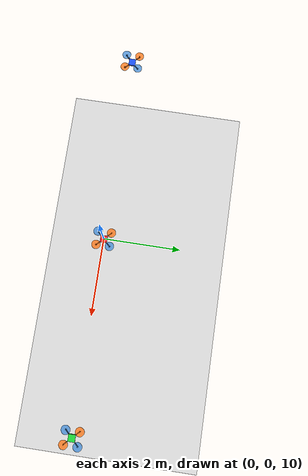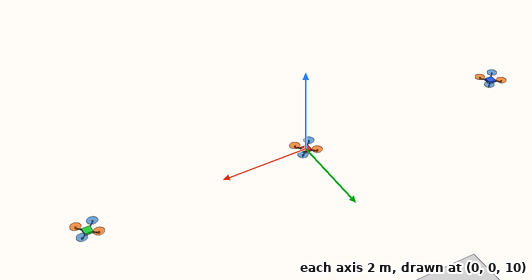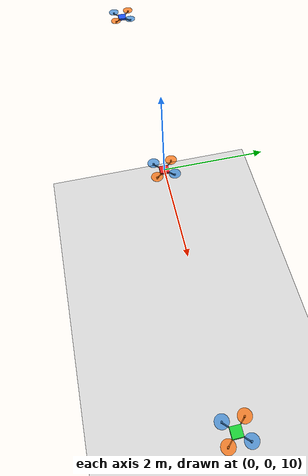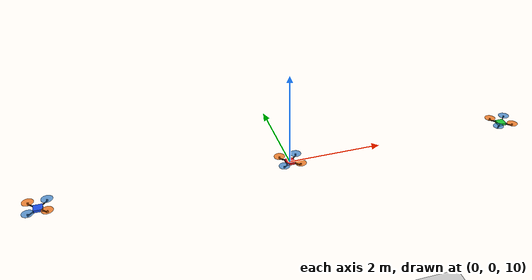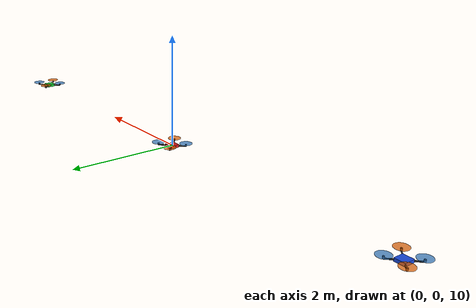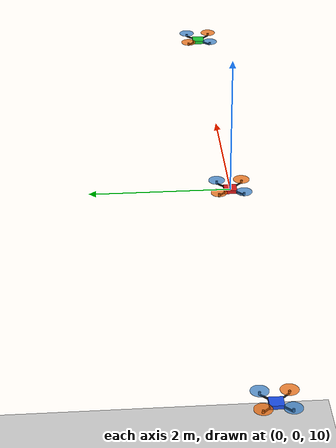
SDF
<?xml version="1.0"?>
<sdf version="1.8">
  <world name="uav_swarm_world">

    <physics name="1ms" type="ode">
      <max_step_size>0.001</max_step_size>
      <real_time_factor>1.0</real_time_factor>
      <real_time_update_rate>1000</real_time_update_rate>
    </physics>

    <plugin filename="ignition-gazebo-physics-system"
            name="ignition::gazebo::systems::Physics"/>
    <!-- UserCommands provides the /world/uav_swarm_world/set_pose service -->
    <plugin filename="ignition-gazebo-user-commands-system"
            name="ignition::gazebo::systems::UserCommands"/>
    <plugin filename="ignition-gazebo-scene-broadcaster-system"
            name="ignition::gazebo::systems::SceneBroadcaster"/>
    <plugin filename="ignition-gazebo-apply-link-wrench-system"
            name="ignition::gazebo::systems::ApplyLinkWrench"/>

    <!-- Lighting -->
    <light type="directional" name="sun">
      <cast_shadows>true</cast_shadows>
      <pose>0 0 10 0 0 0</pose>
      <diffuse>0.8 0.8 0.8 1</diffuse>
      <specular>0.2 0.2 0.2 1</specular>
      <attenuation>
        <range>1000</range><constant>0.9</constant>
        <linear>0.01</linear><quadratic>0.001</quadratic>
      </attenuation>
      <direction>-0.5 0.1 -0.9</direction>
    </light>

    <!-- Ground plane -->
    <model name="ground_plane">
      <static>true</static>
      <link name="link">
        <collision name="collision">
          <geometry><plane><normal>0 0 1</normal><size>100 100</size></plane></geometry>
        </collision>
        <visual name="visual">
          <geometry><plane><normal>0 0 1</normal><size>100 100</size></plane></geometry>
          <material><ambient>0.8 0.8 0.8 1</ambient><diffuse>0.8 0.8 0.8 1</diffuse></material>
        </visual>
      </link>
    </model>

    <!-- ═══════════════════════════════════════════════════════════════
         DRONE 1 — red body
         ═══════════════════════════════════════════════════════════════ -->
    <model name="drone_1">
      <pose>0 0 10 0 0 0</pose>
      <enable_wind>false</enable_wind>
      <!-- PosePublisher: publishes /model/drone_1/pose at 10 Hz.
           Must be at model level (not world level) in Ignition Fortress. -->
      <plugin filename="ignition-gazebo-pose-publisher-system"
              name="ignition::gazebo::systems::PosePublisher">
        <publish_link_pose>false</publish_link_pose>
        <publish_collision_pose>false</publish_collision_pose>
        <publish_visual_pose>false</publish_visual_pose>
        <update_frequency>10.0</update_frequency>
      </plugin>
      <link name="base_link">
        <gravity>false</gravity>
        <inertial>
          <mass>1.5</mass>
          <inertia><ixx>0.029</ixx><iyy>0.029</iyy><izz>0.052</izz></inertia>
        </inertial>
        <collision name="collision">
          <geometry><box><size>0.62 0.62 0.10</size></box></geometry>
        </collision>
        <visual name="body">
          <geometry><box><size>0.18 0.18 0.05</size></box></geometry>
          <material><ambient>0.85 0.10 0.10 1</ambient><diffuse>0.85 0.10 0.10 1</diffuse></material>
        </visual>
        <visual name="arm_fr"><pose>0.0885 -0.0885 0  0 0 -0.7854</pose>
          <geometry><box><size>0.25 0.016 0.016</size></box></geometry>
          <material><ambient>0.15 0.15 0.15 1</ambient><diffuse>0.20 0.20 0.20 1</diffuse></material>
        </visual>
        <visual name="arm_fl"><pose>0.0885 0.0885 0  0 0 0.7854</pose>
          <geometry><box><size>0.25 0.016 0.016</size></box></geometry>
          <material><ambient>0.15 0.15 0.15 1</ambient><diffuse>0.20 0.20 0.20 1</diffuse></material>
        </visual>
        <visual name="arm_rr"><pose>-0.0885 -0.0885 0  0 0 0.7854</pose>
          <geometry><box><size>0.25 0.016 0.016</size></box></geometry>
          <material><ambient>0.15 0.15 0.15 1</ambient><diffuse>0.20 0.20 0.20 1</diffuse></material>
        </visual>
        <visual name="arm_rl"><pose>-0.0885 0.0885 0  0 0 -0.7854</pose>
          <geometry><box><size>0.25 0.016 0.016</size></box></geometry>
          <material><ambient>0.15 0.15 0.15 1</ambient><diffuse>0.20 0.20 0.20 1</diffuse></material>
        </visual>
        <visual name="motor_fr"><pose>0.177 -0.177 0.018 0 0 0</pose>
          <geometry><cylinder><radius>0.016</radius><length>0.036</length></cylinder></geometry>
          <material><ambient>0.08 0.08 0.08 1</ambient><diffuse>0.12 0.12 0.12 1</diffuse></material>
        </visual>
        <visual name="motor_fl"><pose>0.177 0.177 0.018 0 0 0</pose>
          <geometry><cylinder><radius>0.016</radius><length>0.036</length></cylinder></geometry>
          <material><ambient>0.08 0.08 0.08 1</ambient><diffuse>0.12 0.12 0.12 1</diffuse></material>
        </visual>
        <visual name="motor_rr"><pose>-0.177 -0.177 0.018 0 0 0</pose>
          <geometry><cylinder><radius>0.016</radius><length>0.036</length></cylinder></geometry>
          <material><ambient>0.08 0.08 0.08 1</ambient><diffuse>0.12 0.12 0.12 1</diffuse></material>
        </visual>
        <visual name="motor_rl"><pose>-0.177 0.177 0.018 0 0 0</pose>
          <geometry><cylinder><radius>0.016</radius><length>0.036</length></cylinder></geometry>
          <material><ambient>0.08 0.08 0.08 1</ambient><diffuse>0.12 0.12 0.12 1</diffuse></material>
        </visual>
        <visual name="prop_fr"><pose>0.177 -0.177 0.052 0 0 0</pose>
          <geometry><cylinder><radius>0.115</radius><length>0.005</length></cylinder></geometry>
          <material><ambient>0.95 0.40 0.00 0.75</ambient><diffuse>0.95 0.40 0.00 0.75</diffuse></material>
        </visual>
        <visual name="prop_rl"><pose>-0.177 0.177 0.052 0 0 0</pose>
          <geometry><cylinder><radius>0.115</radius><length>0.005</length></cylinder></geometry>
          <material><ambient>0.95 0.40 0.00 0.75</ambient><diffuse>0.95 0.40 0.00 0.75</diffuse></material>
        </visual>
        <visual name="prop_fl"><pose>0.177 0.177 0.052 0 0 0</pose>
          <geometry><cylinder><radius>0.115</radius><length>0.005</length></cylinder></geometry>
          <material><ambient>0.20 0.50 0.80 0.75</ambient><diffuse>0.20 0.50 0.80 0.75</diffuse></material>
        </visual>
        <visual name="prop_rr"><pose>-0.177 -0.177 0.052 0 0 0</pose>
          <geometry><cylinder><radius>0.115</radius><length>0.005</length></cylinder></geometry>
          <material><ambient>0.20 0.50 0.80 0.75</ambient><diffuse>0.20 0.50 0.80 0.75</diffuse></material>
        </visual>
      </link>
    </model>

    <!-- ═══════════════════════════════════════════════════════════════
         DRONE 2 — green body
         ═══════════════════════════════════════════════════════════════ -->
    <model name="drone_2">
      <pose>5 0 10 0 0 0</pose>
      <enable_wind>false</enable_wind>
      <plugin filename="ignition-gazebo-pose-publisher-system"
              name="ignition::gazebo::systems::PosePublisher">
        <publish_link_pose>false</publish_link_pose>
        <publish_collision_pose>false</publish_collision_pose>
        <publish_visual_pose>false</publish_visual_pose>
        <update_frequency>10.0</update_frequency>
      </plugin>
      <link name="base_link">
        <gravity>false</gravity>
        <inertial>
          <mass>1.5</mass>
          <inertia><ixx>0.029</ixx><iyy>0.029</iyy><izz>0.052</izz></inertia>
        </inertial>
        <collision name="collision">
          <geometry><box><size>0.62 0.62 0.10</size></box></geometry>
        </collision>
        <visual name="body">
          <geometry><box><size>0.18 0.18 0.05</size></box></geometry>
          <material><ambient>0.10 0.78 0.20 1</ambient><diffuse>0.10 0.78 0.20 1</diffuse></material>
        </visual>
        <visual name="arm_fr"><pose>0.0885 -0.0885 0  0 0 -0.7854</pose>
          <geometry><box><size>0.25 0.016 0.016</size></box></geometry>
          <material><ambient>0.15 0.15 0.15 1</ambient><diffuse>0.20 0.20 0.20 1</diffuse></material>
        </visual>
        <visual name="arm_fl"><pose>0.0885 0.0885 0  0 0 0.7854</pose>
          <geometry><box><size>0.25 0.016 0.016</size></box></geometry>
          <material><ambient>0.15 0.15 0.15 1</ambient><diffuse>0.20 0.20 0.20 1</diffuse></material>
        </visual>
        <visual name="arm_rr"><pose>-0.0885 -0.0885 0  0 0 0.7854</pose>
          <geometry><box><size>0.25 0.016 0.016</size></box></geometry>
          <material><ambient>0.15 0.15 0.15 1</ambient><diffuse>0.20 0.20 0.20 1</diffuse></material>
        </visual>
        <visual name="arm_rl"><pose>-0.0885 0.0885 0  0 0 -0.7854</pose>
          <geometry><box><size>0.25 0.016 0.016</size></box></geometry>
          <material><ambient>0.15 0.15 0.15 1</ambient><diffuse>0.20 0.20 0.20 1</diffuse></material>
        </visual>
        <visual name="motor_fr"><pose>0.177 -0.177 0.018 0 0 0</pose>
          <geometry><cylinder><radius>0.016</radius><length>0.036</length></cylinder></geometry>
          <material><ambient>0.08 0.08 0.08 1</ambient><diffuse>0.12 0.12 0.12 1</diffuse></material>
        </visual>
        <visual name="motor_fl"><pose>0.177 0.177 0.018 0 0 0</pose>
          <geometry><cylinder><radius>0.016</radius><length>0.036</length></cylinder></geometry>
          <material><ambient>0.08 0.08 0.08 1</ambient><diffuse>0.12 0.12 0.12 1</diffuse></material>
        </visual>
        <visual name="motor_rr"><pose>-0.177 -0.177 0.018 0 0 0</pose>
          <geometry><cylinder><radius>0.016</radius><length>0.036</length></cylinder></geometry>
          <material><ambient>0.08 0.08 0.08 1</ambient><diffuse>0.12 0.12 0.12 1</diffuse></material>
        </visual>
        <visual name="motor_rl"><pose>-0.177 0.177 0.018 0 0 0</pose>
          <geometry><cylinder><radius>0.016</radius><length>0.036</length></cylinder></geometry>
          <material><ambient>0.08 0.08 0.08 1</ambient><diffuse>0.12 0.12 0.12 1</diffuse></material>
        </visual>
        <visual name="prop_fr"><pose>0.177 -0.177 0.052 0 0 0</pose>
          <geometry><cylinder><radius>0.115</radius><length>0.005</length></cylinder></geometry>
          <material><ambient>0.95 0.40 0.00 0.75</ambient><diffuse>0.95 0.40 0.00 0.75</diffuse></material>
        </visual>
        <visual name="prop_rl"><pose>-0.177 0.177 0.052 0 0 0</pose>
          <geometry><cylinder><radius>0.115</radius><length>0.005</length></cylinder></geometry>
          <material><ambient>0.95 0.40 0.00 0.75</ambient><diffuse>0.95 0.40 0.00 0.75</diffuse></material>
        </visual>
        <visual name="prop_fl"><pose>0.177 0.177 0.052 0 0 0</pose>
          <geometry><cylinder><radius>0.115</radius><length>0.005</length></cylinder></geometry>
          <material><ambient>0.20 0.50 0.80 0.75</ambient><diffuse>0.20 0.50 0.80 0.75</diffuse></material>
        </visual>
        <visual name="prop_rr"><pose>-0.177 -0.177 0.052 0 0 0</pose>
          <geometry><cylinder><radius>0.115</radius><length>0.005</length></cylinder></geometry>
          <material><ambient>0.20 0.50 0.80 0.75</ambient><diffuse>0.20 0.50 0.80 0.75</diffuse></material>
        </visual>
      </link>
    </model>

    <!-- ═══════════════════════════════════════════════════════════════
         DRONE 3 — blue body
         ═══════════════════════════════════════════════════════════════ -->
    <model name="drone_3">
      <pose>-5 0 10 0 0 0</pose>
      <enable_wind>false</enable_wind>
      <plugin filename="ignition-gazebo-pose-publisher-system"
              name="ignition::gazebo::systems::PosePublisher">
        <publish_link_pose>false</publish_link_pose>
        <publish_collision_pose>false</publish_collision_pose>
        <publish_visual_pose>false</publish_visual_pose>
        <update_frequency>10.0</update_frequency>
      </plugin>
      <link name="base_link">
        <gravity>false</gravity>
        <inertial>
          <mass>1.5</mass>
          <inertia><ixx>0.029</ixx><iyy>0.029</iyy><izz>0.052</izz></inertia>
        </inertial>
        <collision name="collision">
          <geometry><box><size>0.62 0.62 0.10</size></box></geometry>
        </collision>
        <visual name="body">
          <geometry><box><size>0.18 0.18 0.05</size></box></geometry>
          <material><ambient>0.10 0.30 0.90 1</ambient><diffuse>0.10 0.30 0.90 1</diffuse></material>
        </visual>
        <visual name="arm_fr"><pose>0.0885 -0.0885 0  0 0 -0.7854</pose>
          <geometry><box><size>0.25 0.016 0.016</size></box></geometry>
          <material><ambient>0.15 0.15 0.15 1</ambient><diffuse>0.20 0.20 0.20 1</diffuse></material>
        </visual>
        <visual name="arm_fl"><pose>0.0885 0.0885 0  0 0 0.7854</pose>
          <geometry><box><size>0.25 0.016 0.016</size></box></geometry>
          <material><ambient>0.15 0.15 0.15 1</ambient><diffuse>0.20 0.20 0.20 1</diffuse></material>
        </visual>
        <visual name="arm_rr"><pose>-0.0885 -0.0885 0  0 0 0.7854</pose>
          <geometry><box><size>0.25 0.016 0.016</size></box></geometry>
          <material><ambient>0.15 0.15 0.15 1</ambient><diffuse>0.20 0.20 0.20 1</diffuse></material>
        </visual>
        <visual name="arm_rl"><pose>-0.0885 0.0885 0  0 0 -0.7854</pose>
          <geometry><box><size>0.25 0.016 0.016</size></box></geometry>
          <material><ambient>0.15 0.15 0.15 1</ambient><diffuse>0.20 0.20 0.20 1</diffuse></material>
        </visual>
        <visual name="motor_fr"><pose>0.177 -0.177 0.018 0 0 0</pose>
          <geometry><cylinder><radius>0.016</radius><length>0.036</length></cylinder></geometry>
          <material><ambient>0.08 0.08 0.08 1</ambient><diffuse>0.12 0.12 0.12 1</diffuse></material>
        </visual>
        <visual name="motor_fl"><pose>0.177 0.177 0.018 0 0 0</pose>
          <geometry><cylinder><radius>0.016</radius><length>0.036</length></cylinder></geometry>
          <material><ambient>0.08 0.08 0.08 1</ambient><diffuse>0.12 0.12 0.12 1</diffuse></material>
        </visual>
        <visual name="motor_rr"><pose>-0.177 -0.177 0.018 0 0 0</pose>
          <geometry><cylinder><radius>0.016</radius><length>0.036</length></cylinder></geometry>
          <material><ambient>0.08 0.08 0.08 1</ambient><diffuse>0.12 0.12 0.12 1</diffuse></material>
        </visual>
        <visual name="motor_rl"><pose>-0.177 0.177 0.018 0 0 0</pose>
          <geometry><cylinder><radius>0.016</radius><length>0.036</length></cylinder></geometry>
          <material><ambient>0.08 0.08 0.08 1</ambient><diffuse>0.12 0.12 0.12 1</diffuse></material>
        </visual>
        <visual name="prop_fr"><pose>0.177 -0.177 0.052 0 0 0</pose>
          <geometry><cylinder><radius>0.115</radius><length>0.005</length></cylinder></geometry>
          <material><ambient>0.95 0.40 0.00 0.75</ambient><diffuse>0.95 0.40 0.00 0.75</diffuse></material>
        </visual>
        <visual name="prop_rl"><pose>-0.177 0.177 0.052 0 0 0</pose>
          <geometry><cylinder><radius>0.115</radius><length>0.005</length></cylinder></geometry>
          <material><ambient>0.95 0.40 0.00 0.75</ambient><diffuse>0.95 0.40 0.00 0.75</diffuse></material>
        </visual>
        <visual name="prop_fl"><pose>0.177 0.177 0.052 0 0 0</pose>
          <geometry><cylinder><radius>0.115</radius><length>0.005</length></cylinder></geometry>
          <material><ambient>0.20 0.50 0.80 0.75</ambient><diffuse>0.20 0.50 0.80 0.75</diffuse></material>
        </visual>
        <visual name="prop_rr"><pose>-0.177 -0.177 0.052 0 0 0</pose>
          <geometry><cylinder><radius>0.115</radius><length>0.005</length></cylinder></geometry>
          <material><ambient>0.20 0.50 0.80 0.75</ambient><diffuse>0.20 0.50 0.80 0.75</diffuse></material>
        </visual>
      </link>
    </model>

  </world>
</sdf>
